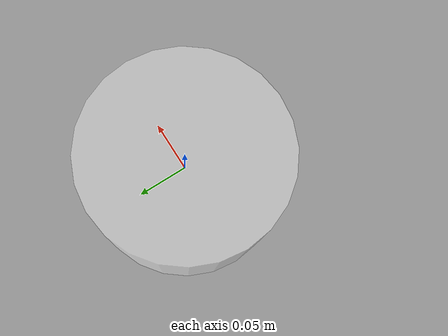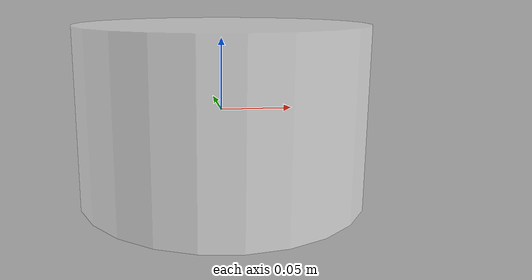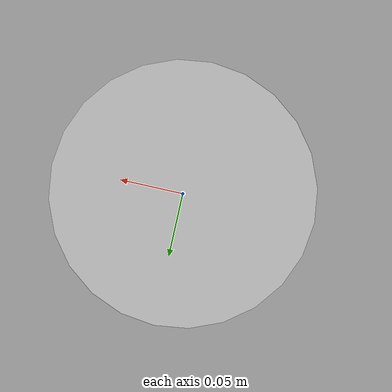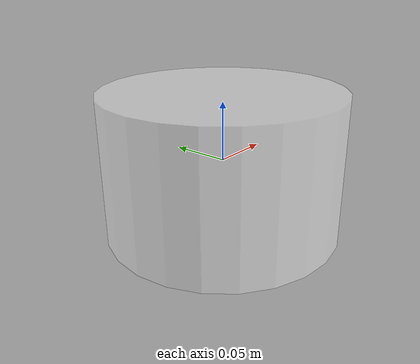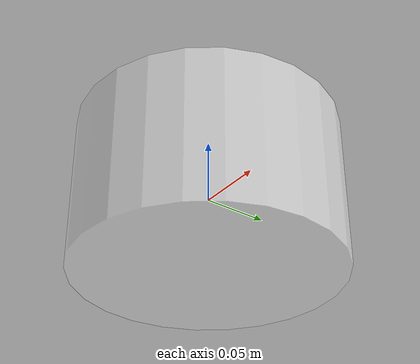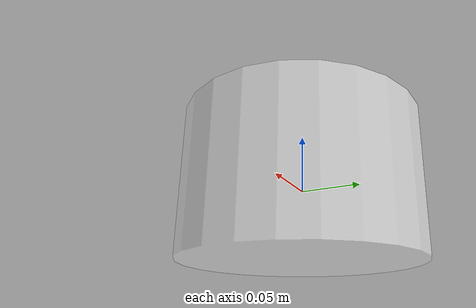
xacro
<?xml version="1.0"?>
<robot xmlns:xacro="http://www.ros.org/wiki/xacro" name="first_robot">
    <xacro:macro name="base_link" params="length radius">
        <link name="base_link">
            <!-- 部件的外观描述 -->
            <visual>
                <!-- 沿着自己几何中心的偏移 和旋转量 -->
                <origin rpy="0 0 0" xyz="0 0 0"/>
                <!-- 几何形状 -->
                <geometry>
                    <!-- 圆柱体 radius 半径 0.10m 高度 length 0.12m -->
                    <cylinder radius="${radius}" length="${length}"/>
                </geometry>
                <!-- 材质颜色 -->
                <material name="white">
                    <color rgba="1 1 1 0.5"/>
                </material>
            </visual>
        </link>
    </xacro:macro>

    <xacro:macro name="imu_link" params="imu_name xyz">
        <!-- IMU惯性测量单元 -->
        <link name="${imu_name}_link">
        <!-- 部件的外观描述 -->
            <visual>
                <!-- 沿着自己几何中心的偏移 和旋转量 -->
                <origin rpy="0 0 0" xyz="0 0 0"/>
                <!-- 几何形状 -->
                <geometry>
                    <!-- 长方体 长宽高者为2cm -->
                    <box size="0.02 0.02 0.02"/>
                </geometry>
                <!-- 材质颜色 -->
                <material name="black">
                    <color rgba="0 0 0 0.5"/>
                </material>
            </visual>
        </link>
            <!-- 机器人的关节，用于组合机器人的部件 -->
        <joint name="${imu_name}_joint" type="fixed">
            <parent link="base_link"/>
            <child link="${imu_name}_link"/>
            <origin xyz="${xyz}" rpy="0.0 0.0 0.0"/>
        </joint>
    </xacro:macro>

    <xacro:base_link length="0.12" radius="0.10"/>
    <xacro:imu_link imu_name="imu_up" xyz="0.0 0.0 0.03"/>
    <xacro:imu_link imu_name="imu_down" xyz="0.0 0.0 -0.03"/>

    <xacro:imu_link imu_name="laser1" xyz="0.0 0.05 0.00"/>
    <xacro:imu_link imu_name="laser2" xyz="0.0 -0.05 0.00"/>

</robot>
